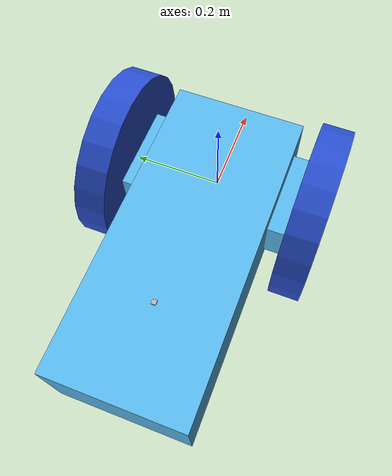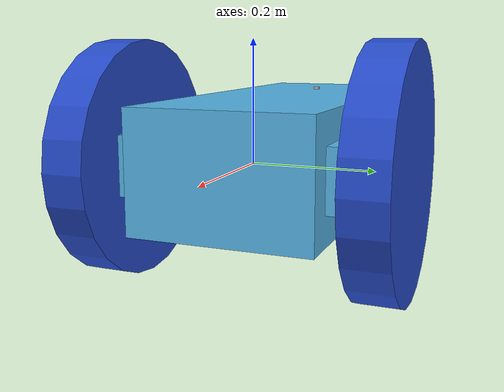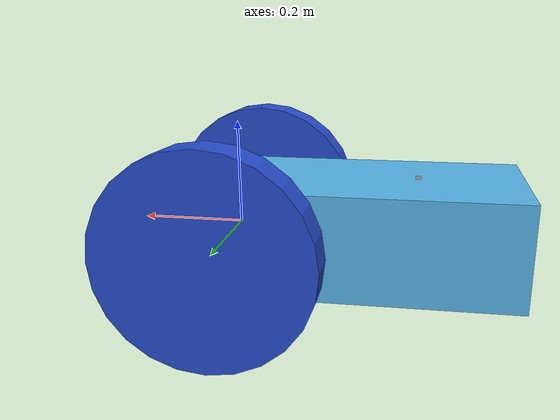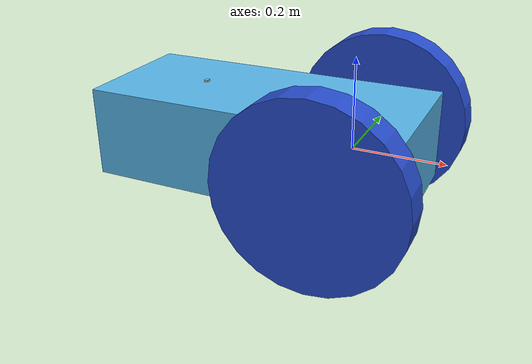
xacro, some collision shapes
<?xml version='1.0'?>

<robot name="my_robot" xmlns:xacro="http://www.ros.org/wiki/xacro">
  <xacro:include filename="$(find my_robot)/urdf/my_robot.gazebo" />
  <link name="robot_footprint"></link>

  <joint name="robot_footprint_joint" type="fixed">
    <origin xyz="0 0 0" rpy="0 0 0" />
    <parent link="robot_footprint"/>
    <child link="chassis" />
  </joint>

  <link name='chassis'>
    <pose>0 0 0.1 0 0 0</pose>

    <inertial>
      <mass value="35.0"/>
      <origin xyz="0.0 0 0" rpy=" 0 0 0"/>
      <inertia
          ixx="0.1" ixy="0" ixz="0"
          iyy="0.1" iyz="0"
          izz="0.1"
      />
    </inertial>

    <collision name='collision'>
      <origin xyz="-0.2 0 0" rpy=" 0 0 0"/>
      <geometry>
        <box size=".7 .3 .2"/>
      </geometry>
    </collision>

    <visual name='chassis_visual'>
      <origin xyz="-0.2 0 0" rpy=" 0 0 0"/>
      <geometry>
        <box size=".7 .3 .2"/>
      </geometry>
    </visual>

       <collision name='Crossbeam_collision'>
      <origin xyz="0 0 0" rpy=" 0 0 0"/>
      <geometry>
        <box size=".2 .4 .1"/>
      </geometry>
    </collision>

    <visual name='Crossbeam_visual'>
      <origin xyz="0 0 0" rpy=" 0 0 3.14159"/>
      <geometry>
        <box size=".2 .4 .1"/>
      </geometry>
    </visual>

    <collision name='back_caster_collision'>
      <origin xyz="-0.1 0 -0.05" rpy=" 0 0 0"/>
      <geometry>
        <sphere radius="0.0499"/>
      </geometry>
    </collision>

    <visual name='back_caster_visual'>
      <origin xyz="-0.1 0 -0.05" rpy=" 0 0 0"/>
      <geometry>
        <sphere radius="0.05"/>
      </geometry>
    </visual>

    <collision name='front_caster_collision'>
      <origin xyz="-0.4 0 -0.05" rpy=" 0 0 0"/>
      <geometry>
        <sphere radius="0.0499"/>
      </geometry>
    </collision>

    <visual name='front_caster_visual'>
      <origin xyz="-0.4 0 -0.05" rpy=" 0 0 0"/>
      <geometry>
        <sphere radius="0.05"/>
      </geometry>
    </visual>

  </link>
<!-- My Left_Wheel-->

<link name='left_wheel'>
    <inertial>
      <mass value="2.0"/>
      <origin xyz="0 0 0" rpy=" 0 1.5707 1.5707"/>
      <inertia
          ixx="0.1" ixy="0" ixz="0"
          iyy="0.1" iyz="0"
          izz="0.1"
      />
    </inertial>

    <collision name='collision'>
      <origin xyz="0 0 0" rpy=" 0 1.5707 1.5707"/>
      <geometry>
        <cylinder radius=".2" length="0.07"/>
      </geometry>
    </collision>

    <visual name='left_wheel_visual'>
      <origin xyz="0 0 0" rpy=" 0 1.5707 1.5707"/>
      <geometry>
        <cylinder radius=".2" length="0.07"/>
      </geometry>
    </visual>
  </link>

  <joint type="continuous" name="left_wheel_hinge">
    <origin xyz="0 0.226 0" rpy="0 0 0"/>
    <child link="left_wheel"/>
    <parent link="chassis"/>
    <axis xyz="0 1 0" rpy="0 0 0"/>
    <limit effort="10000" velocity="1000"/>
    <dynamics damping="1.0" friction="1.0"/>
  </joint>

<!-- My Right_Wheel-->
<link name='right_wheel'>
    <inertial>
      <mass value="2.0"/>
      <origin xyz="0 0 0" rpy=" 0 1.5707 1.5707"/>
      <inertia
          ixx="0.1" ixy="0" ixz="0"
          iyy="0.1" iyz="0"
          izz="0.1"
      />
    </inertial>

    <collision name='collision'>
      <origin xyz="0 0 0" rpy=" 0 1.5707 1.5707"/>
      <geometry>
        <cylinder radius=".2" length="0.07"/>
      </geometry>
    </collision>

    <visual name='right_wheel_visual'>
      <origin xyz="0 0 0" rpy=" 0 1.5707 1.5707"/>
      <geometry>
        <cylinder radius=".2" length="0.07"/>
      </geometry>
    </visual>
  </link>

  <joint type="continuous" name="right_wheel_hinge">
    <origin xyz="0 -0.226 0" rpy="0 0 0"/>
    <child link="right_wheel"/>
    <parent link="chassis"/>
    <axis xyz="0 1 0" rpy="0 0 0"/>
    <limit effort="10000" velocity="1000"/>
    <dynamics damping="1.0" friction="1.0"/>
  </joint>

<!-- My Camera-->
<link name='camera'>
    <inertial>
      <mass value="0.1"/>
      <origin xyz="0 0 0" rpy=" 0 0 0"/>
      <box_inertia m="0.1" x="0.05" y="0.05" z="0.05"/>
      <inertia
          ixx="1e-6" ixy="0" ixz="0"
          iyy="1e-6" iyz="0"
          izz="1e-6"
      />
    </inertial>

    <collision name='collision'>
      <origin xyz="0 0 0" rpy=" 0 0 0"/>
      <geometry>
        <box size=".05 .05 .05"/>
      </geometry>
    </collision>

    <visual name='camera_visual'>
      <origin xyz="0 0 0" rpy=" 0 0 0"/>
      <geometry>
        <box size=".05 .05 .05"/>
      </geometry>
    </visual>
  </link>

  <joint type="fixed" name="camera_joint">
    <origin xyz="0.1 0 0" rpy="0 0 0"/>
    <child link="camera"/>
    <parent link="chassis"/>
    <axis xyz="0 1 0" rpy="0 0 0"/>
  </joint>

  <joint name="camera_optical_joint" type="fixed">
    <origin xyz="0 0 0" rpy="-1.5707 0 -1.5707"/>
    <parent link="camera"/>
    <child link="camera_link_optical"/>
  </joint>

  <link name="camera_link_optical">
  </link>

<!-- Counterbalance-->
<link name='counterbalance'>
    <inertial>
      <mass value="1"/>
      <origin xyz="0 0 0" rpy=" 0 0 0"/>
      <box_inertia m="0.1" x="0.05" y="0.05" z="0.05"/>
      <inertia
          ixx="1e-6" ixy="0" ixz="0"
          iyy="1e-6" iyz="0"
          izz="1e-6"
      />
    </inertial>

    <collision name='collision'>
      <origin xyz="0 0 0" rpy=" 0 0 0"/>
      <geometry>
        <box size=".02 .02 .02"/>
      </geometry>
    </collision>

    <visual name='counterbalance_visual'>
      <origin xyz="0 0 0" rpy=" 0 0 0"/>
      <geometry>
        <box size=".02 .02 .02"/>
      </geometry>
    </visual>
  </link>

  <joint type="fixed" name="counterbalance_joint">
    <origin xyz="-0.45 0 0" rpy="0 0 3.14159"/>
    <child link="counterbalance"/>
    <parent link="chassis"/>
    <axis xyz="0 1 0" rpy="0 0 0"/>
  </joint>

<!-- My Lidar-->
<link name='hokuyo'>
    <inertial>
      <mass value="1e-5"/>
      <origin xyz="0 0 0" rpy=" 0 0 0"/>
      <inertia
          ixx="1e-6" ixy="0" ixz="0"
          iyy="1e-6" iyz="0"
          izz="1e-6"
      />
    </inertial>

    <collision name='collision'>
      <origin xyz="0 0 0" rpy=" 0 0 0"/>
      <geometry>
        <box size=".01 .01 .01"/>
      </geometry>
    </collision>

    <visual name='hokuyo_visual'>
      <origin xyz="0 0 0" rpy=" 0 0 0"/>
      <geometry>
        <mesh filename="package://my_robot/meshes/hokuyo.dae"/>
      </geometry>
    </visual>
  </link>

  <joint type="fixed" name="hokuyo_joint">
    <origin xyz="-0.35 0 0.1" rpy="0 0 0"/>
    <child link="hokuyo"/>
    <parent link="chassis"/>
    <axis xyz="0 1 0" rpy="0 0 0"/>
  </joint>

<gazebo reference="left_wheel">
    <material>Gazebo/Blue</material>
</gazebo>

<gazebo reference="right_wheel">
    <material>Gazebo/Blue</material>
</gazebo>
</robot>
